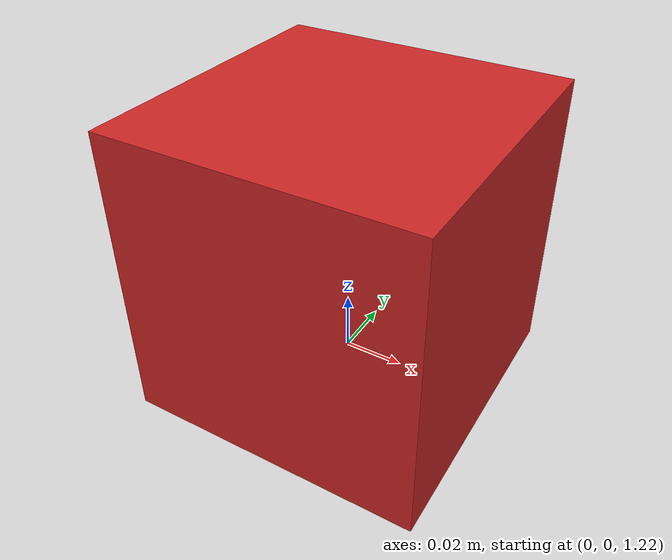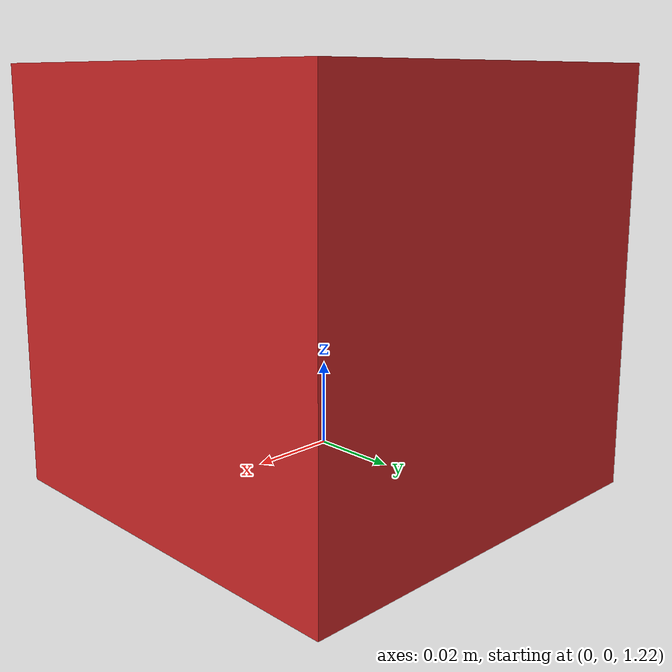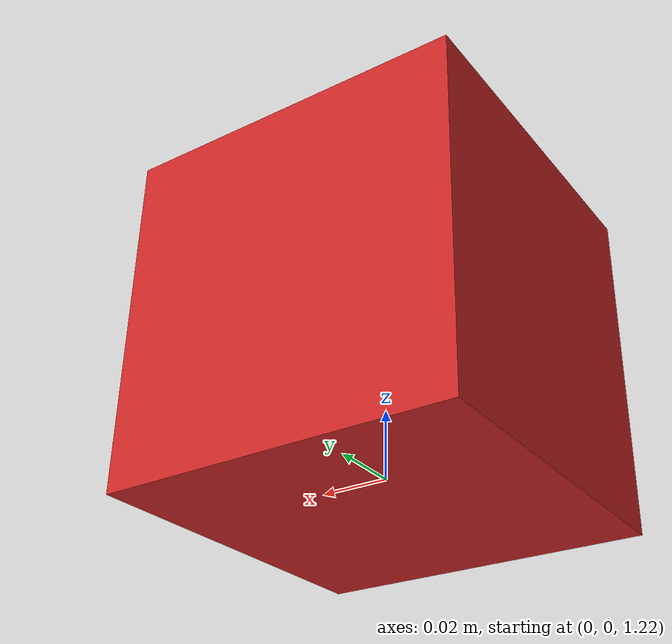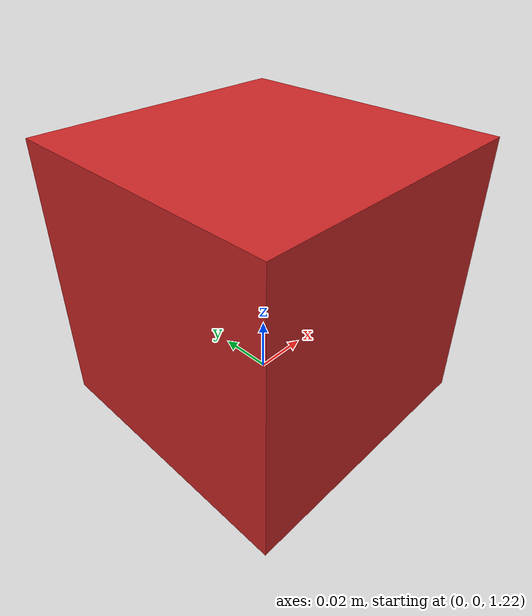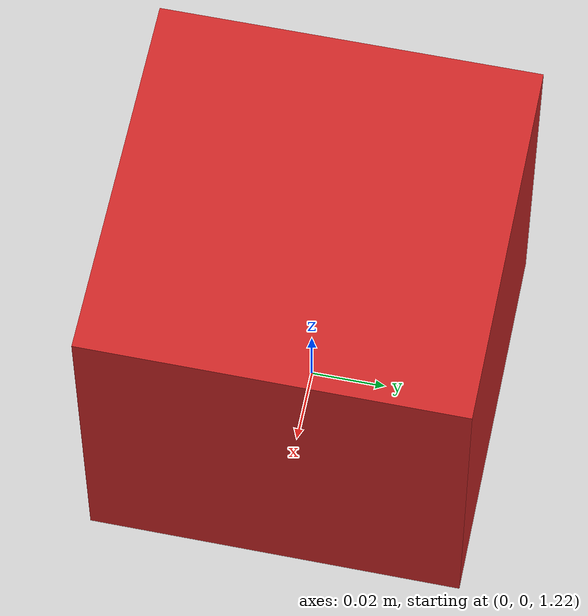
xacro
<?xml version="1.0" ?>
<robot name="stereo_camera" xmlns:xacro="http://ros.org/wiki/xacro">

  <link name="world"/>

  <joint name="fixed" type="fixed">
  <parent link="world"/>
  <child link="stereo_cam"/>
  <origin rpy="0 0 0" xyz="0 0 1.26"/>
  </joint>

  <!-- Camera -->
  <link name="stereo_cam">
    <collision>
      <origin xyz="0 0 0" rpy="0 0 1.26"/>
      <geometry>
    <box size="0.1 0.1 0.1"/>
      </geometry>
    </collision>

    <visual>
      <origin xyz="0 0 0" rpy="0 0 0"/>
      <geometry>
    <box size="0.1 0.1 0.1"/>
      </geometry>
      <material name="red"/>
    </visual>

    <inertial>
      <mass value="1e-5" />
      <origin xyz="0 0 0" rpy="0 0 0"/>
      <inertia ixx="1e-6" ixy="0" ixz="0" iyy="1e-6" iyz="0" izz="1e-6" />
    </inertial>
  </link>

  <gazebo reference="stereo_cam">
    <sensor type="multicamera" name="stereo_camera">
      <update_rate>30.0</update_rate>
      <camera name="left">
        <horizontal_fov>1.3962634</horizontal_fov>
        <image>
          <width>800</width>
          <height>800</height>
          <format>R8G8B8</format>
        </image>
        <clip>
          <near>0.02</near>
          <far>300</far>
        </clip>
        <noise>
          <type>gaussian</type>
          <mean>0.0</mean>
          <stddev>0.007</stddev>
        </noise>
      </camera>
      <camera name="right">
        <pose>0 -0.07 0 0 0 0</pose>
        <horizontal_fov>1.3962634</horizontal_fov>
        <image>
          <width>800</width>
          <height>800</height>
          <format>R8G8B8</format>
        </image>
        <clip>
          <near>0.02</near>
          <far>300</far>
        </clip>
        <noise>
          <type>gaussian</type>
          <mean>0.0</mean>
          <stddev>0.007</stddev>
        </noise>
      </camera>
      <plugin name="stereo_camera_controller" filename="libgazebo_ros_multicamera.so">
        <alwaysOn>true</alwaysOn>
        <updateRate>0.0</updateRate>
        <cameraName>multisense_sl/camera</cameraName>
        <imageTopicName>image_raw</imageTopicName>
        <cameraInfoTopicName>camera_info</cameraInfoTopicName>
        <frameName>left_camera_optical_frame</frameName>
        <hackBaseline>0.07</hackBaseline>
        <distortionK1>0.0</distortionK1>
        <distortionK2>0.0</distortionK2>
        <distortionK3>0.0</distortionK3>
        <distortionT1>0.0</distortionT1>
        <distortionT2>0.0</distortionT2>
      </plugin>
    </sensor>
  </gazebo>

</robot>
